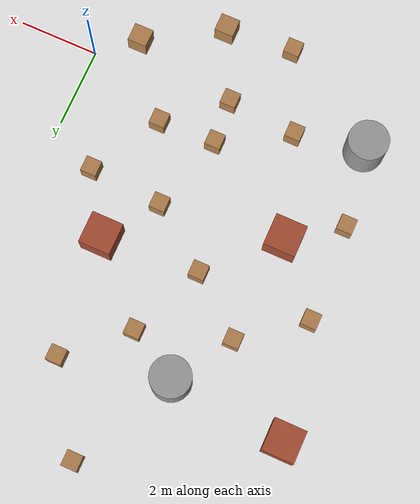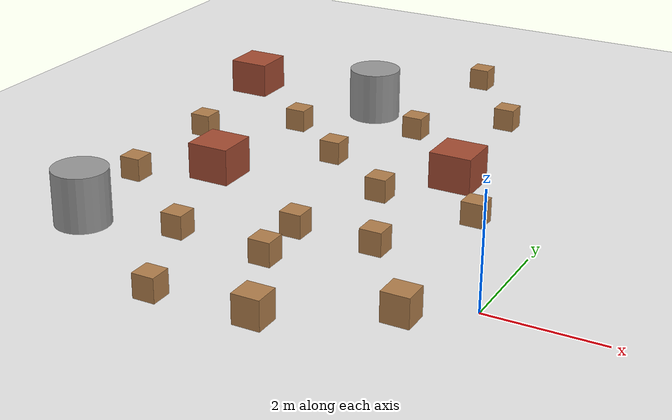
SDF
<sdf version="1.6">
 <world name="default">
  <model name="ground_plane">
   <static>1</static>
   <link name="link">
    <collision name="collision">
     <geometry><plane><normal>0 0 1</normal><size>100 100</size></plane></geometry>
     <surface><friction><ode><mu>100</mu><mu2>50</mu2></ode></friction></surface>
    </collision>
    <visual name="visual">
     <cast_shadows>0</cast_shadows>
     <geometry><plane><normal>0 0 1</normal><size>100 100</size></plane></geometry>
     <material>
      <script><uri>file://media/materials/scripts/gazebo.material</uri><name>Gazebo/White</name></script>
     </material>
    </visual>
   </link>
  </model>
  <model name="Box_11">
   <link name="link">
    <inertial>
     <mass>0.01</mass>
     <inertia>
      <ixx>0.00455697</ixx>
      <ixy>0</ixy>
      <ixz>0</ixz>
      <iyy>0.00475558</iyy>
      <iyz>0</iyz>
      <izz>0.00426137</izz>
     </inertia>
    </inertial>
    <visual name="visual">
     <geometry><box><size>0.483208 0.461193 0.514245</size></box></geometry>
     <material>
      <script><name>Gazebo/WoodFloor</name><uri>file://media/materials/scripts/gazebo.material</uri></script>
      <ambient>0.3 0.3 0.3 1</ambient>
      <diffuse>0.7 0.7 0.7 1</diffuse>
      <specular>0.01 0.01 0.01 1</specular>
      <emissive>0 0 0 1</emissive>
     </material>
    </visual>
    <collision name="collision">
     <geometry><box><size>0.483208 0.461193 0.514245</size></box></geometry>
     <surface>
      <friction>
       <ode><mu>1</mu><mu2>1</mu2><fdir1>0 0 0</fdir1><slip1>0</slip1><slip2>0</slip2></ode>
       <torsional>
        <coefficient>1</coefficient>
        <patch_radius>0</patch_radius>
        <surface_radius>0</surface_radius>
        <use_patch_radius>1</use_patch_radius>
        <ode><slip>0</slip></ode>
       </torsional>
      </friction>
      <bounce><restitution_coefficient>0</restitution_coefficient><threshold>1e+06</threshold></bounce>
      <contact>
       <collide_without_contact>0</collide_without_contact>
       <collide_without_contact_bitmask>1</collide_without_contact_bitmask>
       <collide_bitmask>1</collide_bitmask>
       <ode>
        <soft_cfm>0</soft_cfm>
        <soft_erp>0.2</soft_erp>
        <kp>1e+13</kp>
        <kd>1</kd>
        <max_vel>0.01</max_vel>
        <min_depth>0</min_depth>
       </ode>
       <bullet>
        <split_impulse>1</split_impulse>
        <split_impulse_penetration_threshold>-0.01</split_impulse_penetration_threshold>
        <soft_cfm>0</soft_cfm>
        <soft_erp>0.2</soft_erp>
        <kp>1e+13</kp>
        <kd>1</kd>
       </bullet>
      </contact>
     </surface>
    </collision>
   </link>
   <static>0</static>
   <pose>-0.931138 -0.7292 0.257122 0 0 -6.2e-05</pose>
  </model>
  <model name="Box_14">
   <link name="link">
    <inertial>
     <mass>0.01</mass>
     <inertia>
      <ixx>0.00455697</ixx>
      <ixy>0</ixy>
      <ixz>0</ixz>
      <iyy>0.00475558</iyy>
      <iyz>0</iyz>
      <izz>0.00426137</izz>
     </inertia>
    </inertial>
    <visual name="visual">
     <geometry><box><size>0.483208 0.461193 0.514245</size></box></geometry>
     <material>
      <script><name>Gazebo/WoodFloor</name><uri>file://media/materials/scripts/gazebo.material</uri></script>
      <ambient>0.3 0.3 0.3 1</ambient>
      <diffuse>0.7 0.7 0.7 1</diffuse>
      <specular>0.01 0.01 0.01 1</specular>
      <emissive>0 0 0 1</emissive>
     </material>
    </visual>
    <collision name="collision">
     <geometry><box><size>0.483208 0.461193 0.514245</size></box></geometry>
     <surface>
      <friction>
       <ode><mu>1</mu><mu2>1</mu2><fdir1>0 0 0</fdir1><slip1>0</slip1><slip2>0</slip2></ode>
       <torsional>
        <coefficient>1</coefficient>
        <patch_radius>0</patch_radius>
        <surface_radius>0</surface_radius>
        <use_patch_radius>1</use_patch_radius>
        <ode><slip>0</slip></ode>
       </torsional>
      </friction>
      <bounce><restitution_coefficient>0</restitution_coefficient><threshold>1e+06</threshold></bounce>
      <contact>
       <collide_without_contact>0</collide_without_contact>
       <collide_without_contact_bitmask>1</collide_without_contact_bitmask>
       <collide_bitmask>1</collide_bitmask>
       <ode>
        <soft_cfm>0</soft_cfm>
        <soft_erp>0.2</soft_erp>
        <kp>1e+13</kp>
        <kd>1</kd>
        <max_vel>0.01</max_vel>
        <min_depth>0</min_depth>
       </ode>
       <bullet>
        <split_impulse>1</split_impulse>
        <split_impulse_penetration_threshold>-0.01</split_impulse_penetration_threshold>
        <soft_cfm>0</soft_cfm>
        <soft_erp>0.2</soft_erp>
        <kp>1e+13</kp>
        <kd>1</kd>
       </bullet>
      </contact>
     </surface>
    </collision>
   </link>
   <static>0</static>
   <pose>-2.77632 -1.83894 0.257122 0 -0 0</pose>
  </model>
  <model name="HighRock">
   <link name="link_0">
    <inertial>
     <mass>5</mass>
     <inertia><ixx>0.145833</ixx><ixy>0</ixy><ixz>0</ixz><iyy>0.145833</iyy><iyz>0</iyz><izz>0.125</izz></inertia>
    </inertial>
    <visual name="visual">
     <geometry><cylinder><radius>0.5</radius><length>1</length></cylinder></geometry>
     <material>
      <lighting>1</lighting>
      <script><uri>file://media/materials/scripts/gazebo.material</uri><name>Gazebo/Gray</name></script>
      <ambient>0.3 0.3 0.3 1</ambient>
      <diffuse>0.7 0.7 0.7 1</diffuse>
      <specular>0.01 0.01 0.01 1</specular>
      <emissive>0 0 0 1</emissive>
     </material>
    </visual>
    <collision name="collision">
     <geometry><cylinder><radius>0.5</radius><length>1</length></cylinder></geometry>
     <surface>
      <friction>
       <ode><mu>1</mu><mu2>1</mu2><fdir1>0 0 0</fdir1><slip1>0</slip1><slip2>0</slip2></ode>
       <torsional>
        <coefficient>1</coefficient>
        <patch_radius>0</patch_radius>
        <surface_radius>0</surface_radius>
        <use_patch_radius>1</use_patch_radius>
        <ode><slip>0</slip></ode>
       </torsional>
      </friction>
      <bounce><restitution_coefficient>0</restitution_coefficient><threshold>1e+06</threshold></bounce>
      <contact>
       <collide_without_contact>0</collide_without_contact>
       <collide_without_contact_bitmask>1</collide_without_contact_bitmask>
       <collide_bitmask>1</collide_bitmask>
       <ode>
        <soft_cfm>0</soft_cfm>
        <soft_erp>0.2</soft_erp>
        <kp>1e+13</kp>
        <kd>1</kd>
        <max_vel>0.01</max_vel>
        <min_depth>0</min_depth>
       </ode>
       <bullet>
        <split_impulse>1</split_impulse>
        <split_impulse_penetration_threshold>-0.01</split_impulse_penetration_threshold>
        <soft_cfm>0</soft_cfm>
        <soft_erp>0.2</soft_erp>
        <kp>1e+13</kp>
        <kd>1</kd>
       </bullet>
      </contact>
     </surface>
    </collision>
   </link>
   <static>0</static>
   <pose>-7.07681 -0.330802 0.499999 -1e-06 -0 -8e-06</pose>
  </model>
  <model name="HighRock_1">
   <link name="link_0">
    <inertial>
     <mass>5</mass>
     <inertia><ixx>0.145833</ixx><ixy>0</ixy><ixz>0</ixz><iyy>0.145833</iyy><iyz>0</iyz><izz>0.125</izz></inertia>
    </inertial>
    <visual name="visual">
     <geometry><cylinder><radius>0.5</radius><length>1</length></cylinder></geometry>
     <material>
      <lighting>1</lighting>
      <script><uri>file://media/materials/scripts/gazebo.material</uri><name>Gazebo/Gray</name></script>
      <ambient>0.3 0.3 0.3 1</ambient>
      <diffuse>0.7 0.7 0.7 1</diffuse>
      <specular>0.01 0.01 0.01 1</specular>
      <emissive>0 0 0 1</emissive>
     </material>
    </visual>
    <collision name="collision">
     <geometry><cylinder><radius>0.5</radius><length>1</length></cylinder></geometry>
     <surface>
      <friction>
       <ode><mu>1</mu><mu2>1</mu2><fdir1>0 0 0</fdir1><slip1>0</slip1><slip2>0</slip2></ode>
       <torsional>
        <coefficient>1</coefficient>
        <patch_radius>0</patch_radius>
        <surface_radius>0</surface_radius>
        <use_patch_radius>1</use_patch_radius>
        <ode><slip>0</slip></ode>
       </torsional>
      </friction>
      <bounce><restitution_coefficient>0</restitution_coefficient><threshold>1e+06</threshold></bounce>
      <contact>
       <collide_without_contact>0</collide_without_contact>
       <collide_without_contact_bitmask>1</collide_without_contact_bitmask>
       <collide_bitmask>1</collide_bitmask>
       <ode>
        <soft_cfm>0</soft_cfm>
        <soft_erp>0.2</soft_erp>
        <kp>1e+13</kp>
        <kd>1</kd>
        <max_vel>0.01</max_vel>
        <min_depth>0</min_depth>
       </ode>
       <bullet>
        <split_impulse>1</split_impulse>
        <split_impulse_penetration_threshold>-0.01</split_impulse_penetration_threshold>
        <soft_cfm>0</soft_cfm>
        <soft_erp>0.2</soft_erp>
        <kp>1e+13</kp>
        <kd>1</kd>
       </bullet>
      </contact>
     </surface>
    </collision>
   </link>
   <static>0</static>
   <pose>-5.09712 6.65977 0.499999 1e-06 -0 -4e-06</pose>
  </model>
  <model name="HeavyBox">
   <link name="link">
    <inertial>
     <mass>2</mass>
     <inertia>
      <ixx>0.0402452</ixx>
      <ixy>0</ixy>
      <ixz>0</ixz>
      <iyy>0.0399236</iyy>
      <iyz>0</iyz>
      <izz>0.0461707</izz>
     </inertia>
    </inertial>
    <visual name="visual">
     <geometry><box><size>0.79482 0.800386 0.684447</size></box></geometry>
     <material>
      <script><name>Gazebo/Bricks</name><uri>file://media/materials/scripts/gazebo.material</uri></script>
      <ambient>0.3 0.3 0.3 1</ambient>
      <diffuse>0.7 0.7 0.7 1</diffuse>
      <specular>0.01 0.01 0.01 1</specular>
      <emissive>0 0 0 1</emissive>
     </material>
    </visual>
    <collision name="collision">
     <geometry><box><size>0.79482 0.800386 0.684447</size></box></geometry>
     <surface>
      <friction>
       <ode><mu>1</mu><mu2>1</mu2><fdir1>0 0 0</fdir1><slip1>0</slip1><slip2>0</slip2></ode>
       <torsional>
        <coefficient>1</coefficient>
        <patch_radius>0</patch_radius>
        <surface_radius>0</surface_radius>
        <use_patch_radius>1</use_patch_radius>
        <ode><slip>0</slip></ode>
       </torsional>
      </friction>
      <bounce><restitution_coefficient>0</restitution_coefficient><threshold>1e+06</threshold></bounce>
      <contact>
       <collide_without_contact>0</collide_without_contact>
       <collide_without_contact_bitmask>1</collide_without_contact_bitmask>
       <collide_bitmask>1</collide_bitmask>
       <ode>
        <soft_cfm>0</soft_cfm>
        <soft_erp>0.2</soft_erp>
        <kp>1e+13</kp>
        <kd>1</kd>
        <max_vel>0.01</max_vel>
        <min_depth>0</min_depth>
       </ode>
       <bullet>
        <split_impulse>1</split_impulse>
        <split_impulse_penetration_threshold>-0.01</split_impulse_penetration_threshold>
        <soft_cfm>0</soft_cfm>
        <soft_erp>0.2</soft_erp>
        <kp>1e+13</kp>
        <kd>1</kd>
       </bullet>
      </contact>
     </surface>
    </collision>
   </link>
   <static>0</static>
   <pose>-8.0093 6.8965 0.342219 0 -1.1e-05 0.000196</pose>
  </model>
  <model name="HeavyBox_5">
   <link name="link">
    <inertial>
     <mass>2</mass>
     <inertia>
      <ixx>0.0402452</ixx>
      <ixy>0</ixy>
      <ixz>0</ixz>
      <iyy>0.0399236</iyy>
      <iyz>0</iyz>
      <izz>0.0461707</izz>
     </inertia>
    </inertial>
    <visual name="visual">
     <geometry><box><size>0.79482 0.800386 0.684447</size></box></geometry>
     <material>
      <script><name>Gazebo/Bricks</name><uri>file://media/materials/scripts/gazebo.material</uri></script>
      <ambient>0.3 0.3 0.3 1</ambient>
      <diffuse>0.7 0.7 0.7 1</diffuse>
      <specular>0.01 0.01 0.01 1</specular>
      <emissive>0 0 0 1</emissive>
     </material>
    </visual>
    <collision name="collision">
     <geometry><box><size>0.79482 0.800386 0.684447</size></box></geometry>
     <surface>
      <friction>
       <ode><mu>1</mu><mu2>1</mu2><fdir1>0 0 0</fdir1><slip1>0</slip1><slip2>0</slip2></ode>
       <torsional>
        <coefficient>1</coefficient>
        <patch_radius>0</patch_radius>
        <surface_radius>0</surface_radius>
        <use_patch_radius>1</use_patch_radius>
        <ode><slip>0</slip></ode>
       </torsional>
      </friction>
      <bounce><restitution_coefficient>0</restitution_coefficient><threshold>1e+06</threshold></bounce>
      <contact>
       <collide_without_contact>0</collide_without_contact>
       <collide_without_contact_bitmask>1</collide_without_contact_bitmask>
       <collide_bitmask>1</collide_bitmask>
       <ode>
        <soft_cfm>0</soft_cfm>
        <soft_erp>0.2</soft_erp>
        <kp>1e+13</kp>
        <kd>1</kd>
        <max_vel>0.01</max_vel>
        <min_depth>0</min_depth>
       </ode>
       <bullet>
        <split_impulse>1</split_impulse>
        <split_impulse_penetration_threshold>-0.01</split_impulse_penetration_threshold>
        <soft_cfm>0</soft_cfm>
        <soft_erp>0.2</soft_erp>
        <kp>1e+13</kp>
        <kd>1</kd>
       </bullet>
      </contact>
     </surface>
    </collision>
   </link>
   <static>0</static>
   <pose>-2.19758 4.232 0.342219 0 -1.1e-05 8.8e-05</pose>
  </model>
  <model name="HeavyBox_7">
   <link name="link">
    <inertial>
     <mass>2</mass>
     <inertia>
      <ixx>0.0402452</ixx>
      <ixy>0</ixy>
      <ixz>0</ixz>
      <iyy>0.0399236</iyy>
      <iyz>0</iyz>
      <izz>0.0461707</izz>
     </inertia>
    </inertial>
    <visual name="visual">
     <geometry><box><size>0.79482 0.800386 0.684447</size></box></geometry>
     <material>
      <script><name>Gazebo/Bricks</name><uri>file://media/materials/scripts/gazebo.material</uri></script>
      <ambient>0.3 0.3 0.3 1</ambient>
      <diffuse>0.7 0.7 0.7 1</diffuse>
      <specular>0.01 0.01 0.01 1</specular>
      <emissive>0 0 0 1</emissive>
     </material>
    </visual>
    <collision name="collision">
     <geometry><box><size>0.79482 0.800386 0.684447</size></box></geometry>
     <surface>
      <friction>
       <ode><mu>1</mu><mu2>1</mu2><fdir1>0 0 0</fdir1><slip1>0</slip1><slip2>0</slip2></ode>
       <torsional>
        <coefficient>1</coefficient>
        <patch_radius>0</patch_radius>
        <surface_radius>0</surface_radius>
        <use_patch_radius>1</use_patch_radius>
        <ode><slip>0</slip></ode>
       </torsional>
      </friction>
      <bounce><restitution_coefficient>0</restitution_coefficient><threshold>1e+06</threshold></bounce>
      <contact>
       <collide_without_contact>0</collide_without_contact>
       <collide_without_contact_bitmask>1</collide_without_contact_bitmask>
       <collide_bitmask>1</collide_bitmask>
       <ode>
        <soft_cfm>0</soft_cfm>
        <soft_erp>0.2</soft_erp>
        <kp>1e+13</kp>
        <kd>1</kd>
        <max_vel>0.01</max_vel>
        <min_depth>0</min_depth>
       </ode>
       <bullet>
        <split_impulse>1</split_impulse>
        <split_impulse_penetration_threshold>-0.01</split_impulse_penetration_threshold>
        <soft_cfm>0</soft_cfm>
        <soft_erp>0.2</soft_erp>
        <kp>1e+13</kp>
        <kd>1</kd>
       </bullet>
      </contact>
     </surface>
    </collision>
   </link>
   <static>0</static>
   <pose>-6.17388 2.51628 0.342219 -0 1.1e-05 0.000122</pose>
  </model>
  <model name="Box">
   <link name="link_0">
    <inertial>
     <mass>0.01</mass>
     <inertia>
      <ixx>0.00187998</ixx>
      <ixy>0</ixy>
      <ixz>0</ixz>
      <iyy>0.00189171</iyy>
      <iyz>0</iyz>
      <izz>0.0017286</izz>
     </inertia>
    </inertial>
    <visual name="visual">
     <geometry><box><size>0.39572 0.393033 0.428759</size></box></geometry>
     <material>
      <lighting>1</lighting>
      <script><uri>file://media/materials/scripts/gazebo.material</uri><name>Gazebo/WoodFloor</name></script>
      <ambient>0.3 0.3 0.3 1</ambient>
      <diffuse>0.7 0.7 0.7 1</diffuse>
      <specular>0.01 0.01 0.01 1</specular>
      <emissive>0 0 0 1</emissive>
     </material>
    </visual>
    <collision name="collision">
     <geometry><box><size>0.39572 0.393033 0.428759</size></box></geometry>
     <surface>
      <friction>
       <ode><mu>1</mu><mu2>1</mu2><fdir1>0 0 0</fdir1><slip1>0</slip1><slip2>0</slip2></ode>
       <torsional>
        <coefficient>1</coefficient>
        <patch_radius>0</patch_radius>
        <surface_radius>0</surface_radius>
        <use_patch_radius>1</use_patch_radius>
        <ode><slip>0</slip></ode>
       </torsional>
      </friction>
      <bounce><restitution_coefficient>0</restitution_coefficient><threshold>1e+06</threshold></bounce>
      <contact>
       <collide_without_contact>0</collide_without_contact>
       <collide_without_contact_bitmask>1</collide_without_contact_bitmask>
       <collide_bitmask>1</collide_bitmask>
       <ode>
        <soft_cfm>0</soft_cfm>
        <soft_erp>0.2</soft_erp>
        <kp>1e+13</kp>
        <kd>1</kd>
        <max_vel>0.01</max_vel>
        <min_depth>0</min_depth>
       </ode>
       <bullet>
        <split_impulse>1</split_impulse>
        <split_impulse_penetration_threshold>-0.01</split_impulse_penetration_threshold>
        <soft_cfm>0</soft_cfm>
        <soft_erp>0.2</soft_erp>
        <kp>1e+13</kp>
        <kd>1</kd>
       </bullet>
      </contact>
     </surface>
    </collision>
   </link>
   <static>0</static>
   <pose>-4.49548 -1.98645 0.257122 0 -0 0</pose>
  </model>
  <model name="Box_3">
   <link name="link_0">
    <inertial>
     <mass>0.01</mass>
     <inertia>
      <ixx>0.00187998</ixx>
      <ixy>0</ixy>
      <ixz>0</ixz>
      <iyy>0.00189171</iyy>
      <iyz>0</iyz>
      <izz>0.0017286</izz>
     </inertia>
    </inertial>
    <visual name="visual">
     <geometry><box><size>0.39572 0.393033 0.428759</size></box></geometry>
     <material>
      <lighting>1</lighting>
      <script><uri>file://media/materials/scripts/gazebo.material</uri><name>Gazebo/WoodFloor</name></script>
      <ambient>0.3 0.3 0.3 1</ambient>
      <diffuse>0.7 0.7 0.7 1</diffuse>
      <specular>0.01 0.01 0.01 1</specular>
      <emissive>0 0 0 1</emissive>
     </material>
    </visual>
    <collision name="collision">
     <geometry><box><size>0.39572 0.393033 0.428759</size></box></geometry>
     <surface>
      <friction>
       <ode><mu>1</mu><mu2>1</mu2><fdir1>0 0 0</fdir1><slip1>0</slip1><slip2>0</slip2></ode>
       <torsional>
        <coefficient>1</coefficient>
        <patch_radius>0</patch_radius>
        <surface_radius>0</surface_radius>
        <use_patch_radius>1</use_patch_radius>
        <ode><slip>0</slip></ode>
       </torsional>
      </friction>
      <bounce><restitution_coefficient>0</restitution_coefficient><threshold>1e+06</threshold></bounce>
      <contact>
       <collide_without_contact>0</collide_without_contact>
       <collide_without_contact_bitmask>1</collide_without_contact_bitmask>
       <collide_bitmask>1</collide_bitmask>
       <ode>
        <soft_cfm>0</soft_cfm>
        <soft_erp>0.2</soft_erp>
        <kp>1e+13</kp>
        <kd>1</kd>
        <max_vel>0.01</max_vel>
        <min_depth>0</min_depth>
       </ode>
       <bullet>
        <split_impulse>1</split_impulse>
        <split_impulse_penetration_threshold>-0.01</split_impulse_penetration_threshold>
        <soft_cfm>0</soft_cfm>
        <soft_erp>0.2</soft_erp>
        <kp>1e+13</kp>
        <kd>1</kd>
       </bullet>
      </contact>
     </surface>
    </collision>
   </link>
   <static>0</static>
   <pose>-3.68802 0.975516 0.257122 0 -0 0</pose>
  </model>
  <model name="Box_18">
   <link name="link_0">
    <inertial>
     <mass>0.01</mass>
     <inertia>
      <ixx>0.00187998</ixx>
      <ixy>0</ixy>
      <ixz>0</ixz>
      <iyy>0.00189171</iyy>
      <iyz>0</iyz>
      <izz>0.0017286</izz>
     </inertia>
    </inertial>
    <visual name="visual">
     <geometry><box><size>0.39572 0.393033 0.428759</size></box></geometry>
     <material>
      <lighting>1</lighting>
      <script><uri>file://media/materials/scripts/gazebo.material</uri><name>Gazebo/WoodFloor</name></script>
      <ambient>0.3 0.3 0.3 1</ambient>
      <diffuse>0.7 0.7 0.7 1</diffuse>
      <specular>0.01 0.01 0.01 1</specular>
      <emissive>0 0 0 1</emissive>
     </material>
    </visual>
    <collision name="collision">
     <geometry><box><size>0.39572 0.393033 0.428759</size></box></geometry>
     <surface>
      <friction>
       <ode><mu>1</mu><mu2>1</mu2><fdir1>0 0 0</fdir1><slip1>0</slip1><slip2>0</slip2></ode>
       <torsional>
        <coefficient>1</coefficient>
        <patch_radius>0</patch_radius>
        <surface_radius>0</surface_radius>
        <use_patch_radius>1</use_patch_radius>
        <ode><slip>0</slip></ode>
       </torsional>
      </friction>
      <bounce><restitution_coefficient>0</restitution_coefficient><threshold>1e+06</threshold></bounce>
      <contact>
       <collide_without_contact>0</collide_without_contact>
       <collide_without_contact_bitmask>1</collide_without_contact_bitmask>
       <collide_bitmask>1</collide_bitmask>
       <ode>
        <soft_cfm>0</soft_cfm>
        <soft_erp>0.2</soft_erp>
        <kp>1e+13</kp>
        <kd>1</kd>
        <max_vel>0.01</max_vel>
        <min_depth>0</min_depth>
       </ode>
       <bullet>
        <split_impulse>1</split_impulse>
        <split_impulse_penetration_threshold>-0.01</split_impulse_penetration_threshold>
        <soft_cfm>0</soft_cfm>
        <soft_erp>0.2</soft_erp>
        <kp>1e+13</kp>
        <kd>1</kd>
       </bullet>
      </contact>
     </surface>
    </collision>
   </link>
   <static>0</static>
   <pose>-2.44625 7.22059 0.257122 0 -0 0</pose>
  </model>
  <model name="Box_22">
   <link name="link_0">
    <inertial>
     <mass>0.01</mass>
     <inertia>
      <ixx>0.00187998</ixx>
      <ixy>0</ixy>
      <ixz>0</ixz>
      <iyy>0.00189171</iyy>
      <iyz>0</iyz>
      <izz>0.0017286</izz>
     </inertia>
    </inertial>
    <visual name="visual">
     <geometry><box><size>0.39572 0.393033 0.428759</size></box></geometry>
     <material>
      <lighting>1</lighting>
      <script><uri>file://media/materials/scripts/gazebo.material</uri><name>Gazebo/WoodFloor</name></script>
      <ambient>0.3 0.3 0.3 1</ambient>
      <diffuse>0.7 0.7 0.7 1</diffuse>
      <specular>0.01 0.01 0.01 1</specular>
      <emissive>0 0 0 1</emissive>
     </material>
    </visual>
    <collision name="collision">
     <geometry><box><size>0.39572 0.393033 0.428759</size></box></geometry>
     <surface>
      <friction>
       <ode><mu>1</mu><mu2>1</mu2><fdir1>0 0 0</fdir1><slip1>0</slip1><slip2>0</slip2></ode>
       <torsional>
        <coefficient>1</coefficient>
        <patch_radius>0</patch_radius>
        <surface_radius>0</surface_radius>
        <use_patch_radius>1</use_patch_radius>
        <ode><slip>0</slip></ode>
       </torsional>
      </friction>
      <bounce><restitution_coefficient>0</restitution_coefficient><threshold>1e+06</threshold></bounce>
      <contact>
       <collide_without_contact>0</collide_without_contact>
       <collide_without_contact_bitmask>1</collide_without_contact_bitmask>
       <collide_bitmask>1</collide_bitmask>
       <ode>
        <soft_cfm>0</soft_cfm>
        <soft_erp>0.2</soft_erp>
        <kp>1e+13</kp>
        <kd>1</kd>
        <max_vel>0.01</max_vel>
        <min_depth>0</min_depth>
       </ode>
       <bullet>
        <split_impulse>1</split_impulse>
        <split_impulse_penetration_threshold>-0.01</split_impulse_penetration_threshold>
        <soft_cfm>0</soft_cfm>
        <soft_erp>0.2</soft_erp>
        <kp>1e+13</kp>
        <kd>1</kd>
       </bullet>
      </contact>
     </surface>
    </collision>
   </link>
   <static>0</static>
   <pose>-6.0283 5.21595 0.257122 0 -0 0</pose>
  </model>
  <model name="Box_29">
   <link name="link_0">
    <inertial>
     <mass>0.01</mass>
     <inertia>
      <ixx>0.00187998</ixx>
      <ixy>0</ixy>
      <ixz>0</ixz>
      <iyy>0.00189171</iyy>
      <iyz>0</iyz>
      <izz>0.0017286</izz>
     </inertia>
    </inertial>
    <visual name="visual">
     <geometry><box><size>0.39572 0.393033 0.428759</size></box></geometry>
     <material>
      <lighting>1</lighting>
      <script><uri>file://media/materials/scripts/gazebo.material</uri><name>Gazebo/WoodFloor</name></script>
      <ambient>0.3 0.3 0.3 1</ambient>
      <diffuse>0.7 0.7 0.7 1</diffuse>
      <specular>0.01 0.01 0.01 1</specular>
      <emissive>0 0 0 1</emissive>
     </material>
    </visual>
    <collision name="collision">
     <geometry><box><size>0.39572 0.393033 0.428759</size></box></geometry>
     <surface>
      <friction>
       <ode><mu>1</mu><mu2>1</mu2><fdir1>0 0 0</fdir1><slip1>0</slip1><slip2>0</slip2></ode>
       <torsional>
        <coefficient>1</coefficient>
        <patch_radius>0</patch_radius>
        <surface_radius>0</surface_radius>
        <use_patch_radius>1</use_patch_radius>
        <ode><slip>0</slip></ode>
       </torsional>
      </friction>
      <bounce><restitution_coefficient>0</restitution_coefficient><threshold>1e+06</threshold></bounce>
      <contact>
       <collide_without_contact>0</collide_without_contact>
       <collide_without_contact_bitmask>1</collide_without_contact_bitmask>
       <collide_bitmask>1</collide_bitmask>
       <ode>
        <soft_cfm>0</soft_cfm>
        <soft_erp>0.2</soft_erp>
        <kp>1e+13</kp>
        <kd>1</kd>
        <max_vel>0.01</max_vel>
        <min_depth>0</min_depth>
       </ode>
       <bullet>
        <split_impulse>1</split_impulse>
        <split_impulse_penetration_threshold>-0.01</split_impulse_penetration_threshold>
        <soft_cfm>0</soft_cfm>
        <soft_erp>0.2</soft_erp>
        <kp>1e+13</kp>
        <kd>1</kd>
       </bullet>
      </contact>
     </surface>
    </collision>
   </link>
   <static>0</static>
   <pose>-2.24175 1.03001 0.257122 0 -0 0</pose>
  </model>
  <model name="Box_30">
   <link name="link_0">
    <inertial>
     <mass>0.01</mass>
     <inertia>
      <ixx>0.00187998</ixx>
      <ixy>0</ixy>
      <ixz>0</ixz>
      <iyy>0.00189171</iyy>
      <iyz>0</iyz>
      <izz>0.0017286</izz>
     </inertia>
    </inertial>
    <visual name="visual">
     <geometry><box><size>0.39572 0.393033 0.428759</size></box></geometry>
     <material>
      <lighting>1</lighting>
      <script><uri>file://media/materials/scripts/gazebo.material</uri><name>Gazebo/WoodFloor</name></script>
      <ambient>0.3 0.3 0.3 1</ambient>
      <diffuse>0.7 0.7 0.7 1</diffuse>
      <specular>0.01 0.01 0.01 1</specular>
      <emissive>0 0 0 1</emissive>
     </material>
    </visual>
    <collision name="collision">
     <geometry><box><size>0.39572 0.393033 0.428759</size></box></geometry>
     <surface>
      <friction>
       <ode><mu>1</mu><mu2>1</mu2><fdir1>0 0 0</fdir1><slip1>0</slip1><slip2>0</slip2></ode>
       <torsional>
        <coefficient>1</coefficient>
        <patch_radius>0</patch_radius>
        <surface_radius>0</surface_radius>
        <use_patch_radius>1</use_patch_radius>
        <ode><slip>0</slip></ode>
       </torsional>
      </friction>
      <bounce><restitution_coefficient>0</restitution_coefficient><threshold>1e+06</threshold></bounce>
      <contact>
       <collide_without_contact>0</collide_without_contact>
       <collide_without_contact_bitmask>1</collide_without_contact_bitmask>
       <collide_bitmask>1</collide_bitmask>
       <ode>
        <soft_cfm>0</soft_cfm>
        <soft_erp>0.2</soft_erp>
        <kp>1e+13</kp>
        <kd>1</kd>
        <max_vel>0.01</max_vel>
        <min_depth>0</min_depth>
       </ode>
       <bullet>
        <split_impulse>1</split_impulse>
        <split_impulse_penetration_threshold>-0.01</split_impulse_penetration_threshold>
        <soft_cfm>0</soft_cfm>
        <soft_erp>0.2</soft_erp>
        <kp>1e+13</kp>
        <kd>1</kd>
       </bullet>
      </contact>
     </surface>
    </collision>
   </link>
   <static>0</static>
   <pose>-3.11472 2.93846 0.257122 0 -0 0</pose>
  </model>
  <model name="Box_31">
   <link name="link_0">
    <inertial>
     <mass>0.01</mass>
     <inertia>
      <ixx>0.00187998</ixx>
      <ixy>0</ixy>
      <ixz>0</ixz>
      <iyy>0.00189171</iyy>
      <iyz>0</iyz>
      <izz>0.0017286</izz>
     </inertia>
    </inertial>
    <visual name="visual">
     <geometry><box><size>0.39572 0.393033 0.428759</size></box></geometry>
     <material>
      <lighting>1</lighting>
      <script><uri>file://media/materials/scripts/gazebo.material</uri><name>Gazebo/WoodFloor</name></script>
      <ambient>0.3 0.3 0.3 1</ambient>
      <diffuse>0.7 0.7 0.7 1</diffuse>
      <specular>0.01 0.01 0.01 1</specular>
      <emissive>0 0 0 1</emissive>
     </material>
    </visual>
    <collision name="collision">
     <geometry><box><size>0.39572 0.393033 0.428759</size></box></geometry>
     <surface>
      <friction>
       <ode><mu>1</mu><mu2>1</mu2><fdir1>0 0 0</fdir1><slip1>0</slip1><slip2>0</slip2></ode>
       <torsional>
        <coefficient>1</coefficient>
        <patch_radius>0</patch_radius>
        <surface_radius>0</surface_radius>
        <use_patch_radius>1</use_patch_radius>
        <ode><slip>0</slip></ode>
       </torsional>
      </friction>
      <bounce><restitution_coefficient>0</restitution_coefficient><threshold>1e+06</threshold></bounce>
      <contact>
       <collide_without_contact>0</collide_without_contact>
       <collide_without_contact_bitmask>1</collide_without_contact_bitmask>
       <collide_bitmask>1</collide_bitmask>
       <ode>
        <soft_cfm>0</soft_cfm>
        <soft_erp>0.2</soft_erp>
        <kp>1e+13</kp>
        <kd>1</kd>
        <max_vel>0.01</max_vel>
        <min_depth>0</min_depth>
       </ode>
       <bullet>
        <split_impulse>1</split_impulse>
        <split_impulse_penetration_threshold>-0.01</split_impulse_penetration_threshold>
        <soft_cfm>0</soft_cfm>
        <soft_erp>0.2</soft_erp>
        <kp>1e+13</kp>
        <kd>1</kd>
       </bullet>
      </contact>
     </surface>
    </collision>
   </link>
   <static>0</static>
   <pose>-3.60337 -0.139648 0.257122 0 -0 0</pose>
  </model>
  <model name="Box_35">
   <link name="link_0">
    <inertial>
     <mass>0.01</mass>
     <inertia>
      <ixx>0.00187998</ixx>
      <ixy>0</ixy>
      <ixz>0</ixz>
      <iyy>0.00189171</iyy>
      <iyz>0</iyz>
      <izz>0.0017286</izz>
     </inertia>
    </inertial>
    <visual name="visual">
     <geometry><box><size>0.39572 0.393033 0.428759</size></box></geometry>
     <material>
      <lighting>1</lighting>
      <script><uri>file://media/materials/scripts/gazebo.material</uri><name>Gazebo/WoodFloor</name></script>
      <ambient>0.3 0.3 0.3 1</ambient>
      <diffuse>0.7 0.7 0.7 1</diffuse>
      <specular>0.01 0.01 0.01 1</specular>
      <emissive>0 0 0 1</emissive>
     </material>
    </visual>
    <collision name="collision">
     <geometry><box><size>0.39572 0.393033 0.428759</size></box></geometry>
     <surface>
      <friction>
       <ode><mu>1</mu><mu2>1</mu2><fdir1>0 0 0</fdir1><slip1>0</slip1><slip2>0</slip2></ode>
       <torsional>
        <coefficient>1</coefficient>
        <patch_radius>0</patch_radius>
        <surface_radius>0</surface_radius>
        <use_patch_radius>1</use_patch_radius>
        <ode><slip>0</slip></ode>
       </torsional>
      </friction>
      <bounce><restitution_coefficient>0</restitution_coefficient><threshold>1e+06</threshold></bounce>
      <contact>
       <collide_without_contact>0</collide_without_contact>
       <collide_without_contact_bitmask>1</collide_without_contact_bitmask>
       <collide_bitmask>1</collide_bitmask>
       <ode>
        <soft_cfm>0</soft_cfm>
        <soft_erp>0.2</soft_erp>
        <kp>1e+13</kp>
        <kd>1</kd>
        <max_vel>0.01</max_vel>
        <min_depth>0</min_depth>
       </ode>
       <bullet>
        <split_impulse>1</split_impulse>
        <split_impulse_penetration_threshold>-0.01</split_impulse_penetration_threshold>
        <soft_cfm>0</soft_cfm>
        <soft_erp>0.2</soft_erp>
        <kp>1e+13</kp>
        <kd>1</kd>
       </bullet>
      </contact>
     </surface>
    </collision>
   </link>
   <static>0</static>
   <pose>-5.3672 0.003029 0.257122 0 -0 0</pose>
  </model>
  <model name="Box_38">
   <link name="link_0">
    <inertial>
     <mass>0.01</mass>
     <inertia>
      <ixx>0.00187998</ixx>
      <ixy>0</ixy>
      <ixz>0</ixz>
      <iyy>0.00189171</iyy>
      <iyz>0</iyz>
      <izz>0.0017286</izz>
     </inertia>
    </inertial>
    <visual name="visual">
     <geometry><box><size>0.39572 0.393033 0.428759</size></box></geometry>
     <material>
      <lighting>1</lighting>
      <script><uri>file://media/materials/scripts/gazebo.material</uri><name>Gazebo/WoodFloor</name></script>
      <ambient>0.3 0.3 0.3 1</ambient>
      <diffuse>0.7 0.7 0.7 1</diffuse>
      <specular>0.01 0.01 0.01 1</specular>
      <emissive>0 0 0 1</emissive>
     </material>
    </visual>
    <collision name="collision">
     <geometry><box><size>0.39572 0.393033 0.428759</size></box></geometry>
     <surface>
      <friction>
       <ode><mu>1</mu><mu2>1</mu2><fdir1>0 0 0</fdir1><slip1>0</slip1><slip2>0</slip2></ode>
       <torsional>
        <coefficient>1</coefficient>
        <patch_radius>0</patch_radius>
        <surface_radius>0</surface_radius>
        <use_patch_radius>1</use_patch_radius>
        <ode><slip>0</slip></ode>
       </torsional>
      </friction>
      <bounce><restitution_coefficient>0</restitution_coefficient><threshold>1e+06</threshold></bounce>
      <contact>
       <collide_without_contact>0</collide_without_contact>
       <collide_without_contact_bitmask>1</collide_without_contact_bitmask>
       <collide_bitmask>1</collide_bitmask>
       <ode>
        <soft_cfm>0</soft_cfm>
        <soft_erp>0.2</soft_erp>
        <kp>1e+13</kp>
        <kd>1</kd>
        <max_vel>0.01</max_vel>
        <min_depth>0</min_depth>
       </ode>
       <bullet>
        <split_impulse>1</split_impulse>
        <split_impulse_penetration_threshold>-0.01</split_impulse_penetration_threshold>
        <soft_cfm>0</soft_cfm>
        <soft_erp>0.2</soft_erp>
        <kp>1e+13</kp>
        <kd>1</kd>
       </bullet>
      </contact>
     </surface>
    </collision>
   </link>
   <static>0</static>
   <pose>-1.24665 2.79527 0.257122 0 -0 0</pose>
  </model>
  <model name="Box_39">
   <link name="link_0">
    <inertial>
     <mass>0.01</mass>
     <inertia>
      <ixx>0.00187998</ixx>
      <ixy>0</ixy>
      <ixz>0</ixz>
      <iyy>0.00189171</iyy>
      <iyz>0</iyz>
      <izz>0.0017286</izz>
     </inertia>
    </inertial>
    <visual name="visual">
     <geometry><box><size>0.39572 0.393033 0.428759</size></box></geometry>
     <material>
      <lighting>1</lighting>
      <script><uri>file://media/materials/scripts/gazebo.material</uri><name>Gazebo/WoodFloor</name></script>
      <ambient>0.3 0.3 0.3 1</ambient>
      <diffuse>0.7 0.7 0.7 1</diffuse>
      <specular>0.01 0.01 0.01 1</specular>
      <emissive>0 0 0 1</emissive>
     </material>
    </visual>
    <collision name="collision">
     <geometry><box><size>0.39572 0.393033 0.428759</size></box></geometry>
     <surface>
      <friction>
       <ode><mu>1</mu><mu2>1</mu2><fdir1>0 0 0</fdir1><slip1>0</slip1><slip2>0</slip2></ode>
       <torsional>
        <coefficient>1</coefficient>
        <patch_radius>0</patch_radius>
        <surface_radius>0</surface_radius>
        <use_patch_radius>1</use_patch_radius>
        <ode><slip>0</slip></ode>
       </torsional>
      </friction>
      <bounce><restitution_coefficient>0</restitution_coefficient><threshold>1e+06</threshold></bounce>
      <contact>
       <collide_without_contact>0</collide_without_contact>
       <collide_without_contact_bitmask>1</collide_without_contact_bitmask>
       <collide_bitmask>1</collide_bitmask>
       <ode>
        <soft_cfm>0</soft_cfm>
        <soft_erp>0.2</soft_erp>
        <kp>1e+13</kp>
        <kd>1</kd>
        <max_vel>0.01</max_vel>
        <min_depth>0</min_depth>
       </ode>
       <bullet>
        <split_impulse>1</split_impulse>
        <split_impulse_penetration_threshold>-0.01</split_impulse_penetration_threshold>
        <soft_cfm>0</soft_cfm>
        <soft_erp>0.2</soft_erp>
        <kp>1e+13</kp>
        <kd>1</kd>
       </bullet>
      </contact>
     </surface>
    </collision>
   </link>
   <static>0</static>
   <pose>-4.63814 4.07188 0.257122 0 -0 0</pose>
  </model>
  <model name="Box_43">
   <link name="link_0">
    <inertial>
     <mass>0.01</mass>
     <inertia>
      <ixx>0.00187998</ixx>
      <ixy>0</ixy>
      <ixz>0</ixz>
      <iyy>0.00189171</iyy>
      <iyz>0</iyz>
      <izz>0.0017286</izz>
     </inertia>
    </inertial>
    <visual name="visual">
     <geometry><box><size>0.39572 0.393033 0.428759</size></box></geometry>
     <material>
      <lighting>1</lighting>
      <script><uri>file://media/materials/scripts/gazebo.material</uri><name>Gazebo/WoodFloor</name></script>
      <ambient>0.3 0.3 0.3 1</ambient>
      <diffuse>0.7 0.7 0.7 1</diffuse>
      <specular>0.01 0.01 0.01 1</specular>
      <emissive>0 0 0 1</emissive>
     </material>
    </visual>
    <collision name="collision">
     <geometry><box><size>0.39572 0.393033 0.428759</size></box></geometry>
     <surface>
      <friction>
       <ode><mu>1</mu><mu2>1</mu2><fdir1>0 0 0</fdir1><slip1>0</slip1><slip2>0</slip2></ode>
       <torsional>
        <coefficient>1</coefficient>
        <patch_radius>0</patch_radius>
        <surface_radius>0</surface_radius>
        <use_patch_radius>1</use_patch_radius>
        <ode><slip>0</slip></ode>
       </torsional>
      </friction>
      <bounce><restitution_coefficient>0</restitution_coefficient><threshold>1e+06</threshold></bounce>
      <contact>
       <collide_without_contact>0</collide_without_contact>
       <collide_without_contact_bitmask>1</collide_without_contact_bitmask>
       <collide_bitmask>1</collide_bitmask>
       <ode>
        <soft_cfm>0</soft_cfm>
        <soft_erp>0.2</soft_erp>
        <kp>1e+13</kp>
        <kd>1</kd>
        <max_vel>0.01</max_vel>
        <min_depth>0</min_depth>
       </ode>
       <bullet>
        <split_impulse>1</split_impulse>
        <split_impulse_penetration_threshold>-0.01</split_impulse_penetration_threshold>
        <soft_cfm>0</soft_cfm>
        <soft_erp>0.2</soft_erp>
        <kp>1e+13</kp>
        <kd>1</kd>
       </bullet>
      </contact>
     </surface>
    </collision>
   </link>
   <static>0</static>
   <pose>-7.50054 4.06839 0.257122 0 -0 0</pose>
  </model>
  <model name="Box_44">
   <link name="link_0">
    <inertial>
     <mass>0.01</mass>
     <inertia>
      <ixx>0.00187998</ixx>
      <ixy>0</ixy>
      <ixz>0</ixz>
      <iyy>0.00189171</iyy>
      <iyz>0</iyz>
      <izz>0.0017286</izz>
     </inertia>
    </inertial>
    <visual name="visual">
     <geometry><box><size>0.39572 0.393033 0.428759</size></box></geometry>
     <material>
      <lighting>1</lighting>
      <script><uri>file://media/materials/scripts/gazebo.material</uri><name>Gazebo/WoodFloor</name></script>
      <ambient>0.3 0.3 0.3 1</ambient>
      <diffuse>0.7 0.7 0.7 1</diffuse>
      <specular>0.01 0.01 0.01 1</specular>
      <emissive>0 0 0 1</emissive>
     </material>
    </visual>
    <collision name="collision">
     <geometry><box><size>0.39572 0.393033 0.428759</size></box></geometry>
     <surface>
      <friction>
       <ode><mu>1</mu><mu2>1</mu2><fdir1>0 0 0</fdir1><slip1>0</slip1><slip2>0</slip2></ode>
       <torsional>
        <coefficient>1</coefficient>
        <patch_radius>0</patch_radius>
        <surface_radius>0</surface_radius>
        <use_patch_radius>1</use_patch_radius>
        <ode><slip>0</slip></ode>
       </torsional>
      </friction>
      <bounce><restitution_coefficient>0</restitution_coefficient><threshold>1e+06</threshold></bounce>
      <contact>
       <collide_without_contact>0</collide_without_contact>
       <collide_without_contact_bitmask>1</collide_without_contact_bitmask>
       <collide_bitmask>1</collide_bitmask>
       <ode>
        <soft_cfm>0</soft_cfm>
        <soft_erp>0.2</soft_erp>
        <kp>1e+13</kp>
        <kd>1</kd>
        <max_vel>0.01</max_vel>
        <min_depth>0</min_depth>
       </ode>
       <bullet>
        <split_impulse>1</split_impulse>
        <split_impulse_penetration_threshold>-0.01</split_impulse_penetration_threshold>
        <soft_cfm>0</soft_cfm>
        <soft_erp>0.2</soft_erp>
        <kp>1e+13</kp>
        <kd>1</kd>
       </bullet>
      </contact>
     </surface>
    </collision>
   </link>
   <static>0</static>
   <pose>-7.39546 1.62803 0.257122 0 -0 0</pose>
  </model>
  <model name="Box_45">
   <link name="link_0">
    <inertial>
     <mass>0.01</mass>
     <inertia>
      <ixx>0.00187998</ixx>
      <ixy>0</ixy>
      <ixz>0</ixz>
      <iyy>0.00189171</iyy>
      <iyz>0</iyz>
      <izz>0.0017286</izz>
     </inertia>
    </inertial>
    <visual name="visual">
     <geometry><box><size>0.39572 0.393033 0.428759</size></box></geometry>
     <material>
      <lighting>1</lighting>
      <script><uri>file://media/materials/scripts/gazebo.material</uri><name>Gazebo/WoodFloor</name></script>
      <ambient>0.3 0.3 0.3 1</ambient>
      <diffuse>0.7 0.7 0.7 1</diffuse>
      <specular>0.01 0.01 0.01 1</specular>
      <emissive>0 0 0 1</emissive>
     </material>
    </visual>
    <collision name="collision">
     <geometry><box><size>0.39572 0.393033 0.428759</size></box></geometry>
     <surface>
      <friction>
       <ode><mu>1</mu><mu2>1</mu2><fdir1>0 0 0</fdir1><slip1>0</slip1><slip2>0</slip2></ode>
       <torsional>
        <coefficient>1</coefficient>
        <patch_radius>0</patch_radius>
        <surface_radius>0</surface_radius>
        <use_patch_radius>1</use_patch_radius>
        <ode><slip>0</slip></ode>
       </torsional>
      </friction>
      <bounce><restitution_coefficient>0</restitution_coefficient><threshold>1e+06</threshold></bounce>
      <contact>
       <collide_without_contact>0</collide_without_contact>
       <collide_without_contact_bitmask>1</collide_without_contact_bitmask>
       <collide_bitmask>1</collide_bitmask>
       <ode>
        <soft_cfm>0</soft_cfm>
        <soft_erp>0.2</soft_erp>
        <kp>1e+13</kp>
        <kd>1</kd>
        <max_vel>0.01</max_vel>
        <min_depth>0</min_depth>
       </ode>
       <bullet>
        <split_impulse>1</split_impulse>
        <split_impulse_penetration_threshold>-0.01</split_impulse_penetration_threshold>
        <soft_cfm>0</soft_cfm>
        <soft_erp>0.2</soft_erp>
        <kp>1e+13</kp>
        <kd>1</kd>
       </bullet>
      </contact>
     </surface>
    </collision>
   </link>
   <static>0</static>
   <pose>-3.83378 5.94156 0.257122 0 -0 0</pose>
  </model>
  <model name="Box_46">
   <link name="link_0">
    <inertial>
     <mass>0.01</mass>
     <inertia>
      <ixx>0.00187998</ixx>
      <ixy>0</ixy>
      <ixz>0</ixz>
      <iyy>0.00189171</iyy>
      <iyz>0</iyz>
      <izz>0.0017286</izz>
     </inertia>
    </inertial>
    <visual name="visual">
     <geometry><box><size>0.39572 0.393033 0.428759</size></box></geometry>
     <material>
      <lighting>1</lighting>
      <script><uri>file://media/materials/scripts/gazebo.material</uri><name>Gazebo/WoodFloor</name></script>
      <ambient>0.3 0.3 0.3 1</ambient>
      <diffuse>0.7 0.7 0.7 1</diffuse>
      <specular>0.01 0.01 0.01 1</specular>
      <emissive>0 0 0 1</emissive>
     </material>
    </visual>
    <collision name="collision">
     <geometry><box><size>0.39572 0.393033 0.428759</size></box></geometry>
     <surface>
      <friction>
       <ode><mu>1</mu><mu2>1</mu2><fdir1>0 0 0</fdir1><slip1>0</slip1><slip2>0</slip2></ode>
       <torsional>
        <coefficient>1</coefficient>
        <patch_radius>0</patch_radius>
        <surface_radius>0</surface_radius>
        <use_patch_radius>1</use_patch_radius>
        <ode><slip>0</slip></ode>
       </torsional>
      </friction>
      <bounce><restitution_coefficient>0</restitution_coefficient><threshold>1e+06</threshold></bounce>
      <contact>
       <collide_without_contact>0</collide_without_contact>
       <collide_without_contact_bitmask>1</collide_without_contact_bitmask>
       <collide_bitmask>1</collide_bitmask>
       <ode>
        <soft_cfm>0</soft_cfm>
        <soft_erp>0.2</soft_erp>
        <kp>1e+13</kp>
        <kd>1</kd>
        <max_vel>0.01</max_vel>
        <min_depth>0</min_depth>
       </ode>
       <bullet>
        <split_impulse>1</split_impulse>
        <split_impulse_penetration_threshold>-0.01</split_impulse_penetration_threshold>
        <soft_cfm>0</soft_cfm>
        <soft_erp>0.2</soft_erp>
        <kp>1e+13</kp>
        <kd>1</kd>
       </bullet>
      </contact>
     </surface>
    </collision>
   </link>
   <static>0</static>
   <pose>-3.81433 9.24399 0.257122 0 -0 0</pose>
  </model>
 </world>
</sdf>
